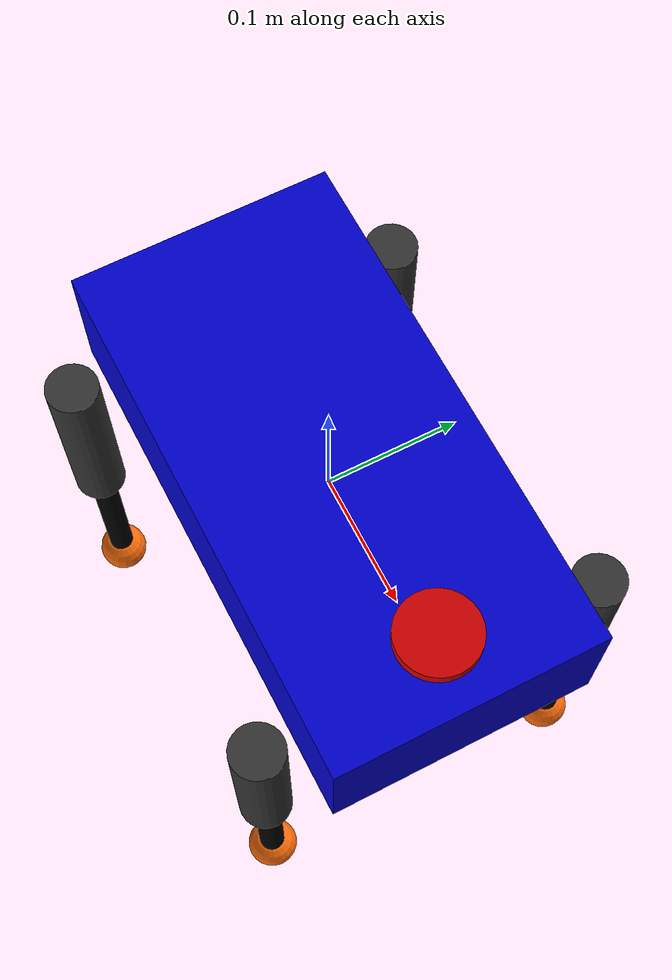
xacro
<?xml version="1.0"?>
<robot name="echowalker" xmlns:xacro="http://www.ros.org/wiki/xacro">

  <!-- Include material definitions -->
  <xacro:include filename="$(find echowalker_description)/urdf/echowalker_materials.xacro" />

  <!-- Include the robot base -->
  <xacro:include filename="$(find echowalker_description)/urdf/echowalker_base.xacro" />

  <!-- Include the leg definitions -->
  <xacro:include filename="$(find echowalker_description)/urdf/echowalker_legs.xacro" />

  <!-- Create 4 legs using the leg macro -->
  <xacro:leg prefix="front_right" reflect_x="1" reflect_y="-1" />
  <xacro:leg prefix="front_left" reflect_x="1" reflect_y="1" />
  <xacro:leg prefix="rear_right" reflect_x="-1" reflect_y="-1" />
  <xacro:leg prefix="rear_left" reflect_x="-1" reflect_y="1" />

  <!-- Add transmission elements for ROS2 control -->
  <xacro:macro name="leg_transmission" params="prefix">
    <transmission name="${prefix}_hip_trans">
      <type>transmission_interface/SimpleTransmission</type>
      <joint name="${prefix}_hip_joint">
        <hardwareInterface>hardware_interface/EffortJointInterface</hardwareInterface>
      </joint>
      <actuator name="${prefix}_hip_motor">
        <mechanicalReduction>1</mechanicalReduction>
      </actuator>
    </transmission>

    <transmission name="${prefix}_knee_trans">
      <type>transmission_interface/SimpleTransmission</type>
      <joint name="${prefix}_knee_joint">
        <hardwareInterface>hardware_interface/EffortJointInterface</hardwareInterface>
      </joint>
      <actuator name="${prefix}_knee_motor">
        <mechanicalReduction>1</mechanicalReduction>
      </actuator>
    </transmission>
  </xacro:macro>

  <!-- Apply transmissions to all legs -->
  <xacro:leg_transmission prefix="front_right" />
  <xacro:leg_transmission prefix="front_left" />
  <xacro:leg_transmission prefix="rear_right" />
  <xacro:leg_transmission prefix="rear_left" />

</robot>

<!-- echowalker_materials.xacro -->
<robot xmlns:xacro="http://www.ros.org/wiki/xacro">

  <material name="black">
    <color rgba="0.0 0.0 0.0 1.0"/>
  </material>

  <material name="blue">
    <color rgba="0.0 0.0 0.8 1.0"/>
  </material>

  <material name="green">
    <color rgba="0.0 0.8 0.0 1.0"/>
  </material>

  <material name="grey">
    <color rgba="0.2 0.2 0.2 1.0"/>
  </material>

  <material name="orange">
    <color rgba="1.0 0.423529411765 0.0392156862745 1.0"/>
  </material>

  <material name="brown">
    <color rgba="0.870588235294 0.811764705882 0.764705882353 1.0"/>
  </material>

  <material name="red">
    <color rgba="0.8 0.0 0.0 1.0"/>
  </material>

  <material name="white">
    <color rgba="1.0 1.0 1.0 1.0"/>
  </material>
</robot>

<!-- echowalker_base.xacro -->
<robot xmlns:xacro="http://www.ros.org/wiki/xacro">

  <xacro:include filename="$(find echowalker_description)/urdf/echowalker_inertia.xacro" />

  <!-- Robot Base Parameters -->
  <xacro:property name="base_length" value="0.4" />
  <xacro:property name="base_width" value="0.2" />
  <xacro:property name="base_height" value="0.1" />
  <xacro:property name="base_mass" value="3.0" />

  <!-- Base Link -->
  <link name="base_link">
    <visual>
      <origin xyz="0 0 0" rpy="0 0 0"/>
      <geometry>
        <box size="${base_length} ${base_width} ${base_height}"/>
      </geometry>
      <material name="blue"/>
    </visual>
    <collision>
      <origin xyz="0 0 0" rpy="0 0 0"/>
      <geometry>
        <box size="${base_length} ${base_width} ${base_height}"/>
      </geometry>
    </collision>
    <inertial>
      <origin xyz="0 0 0" rpy="0 0 0"/>
      <mass value="${base_mass}"/>
      <xacro:box_inertia m="${base_mass}" x="${base_length}" y="${base_width}" z="${base_height}"/>
    </inertial>
  </link>

  <!-- Sound Sensor Link -->
  <link name="sound_sensor">
    <visual>
      <origin xyz="0 0 0" rpy="0 0 0"/>
      <geometry>
        <cylinder radius="0.03" length="0.01"/>
      </geometry>
      <material name="red"/>
    </visual>
    <collision>
      <origin xyz="0 0 0" rpy="0 0 0"/>
      <geometry>
        <cylinder radius="0.03" length="0.01"/>
      </geometry>
    </collision>
    <inertial>
      <origin xyz="0 0 0" rpy="0 0 0"/>
      <mass value="0.01"/>
      <xacro:cylinder_inertia m="0.01" r="0.03" h="0.01"/>
    </inertial>
  </link>

  <!-- Sound Sensor Joint -->
  <joint name="base_to_sound_sensor" type="fixed">
    <parent link="base_link"/>
    <child link="sound_sensor"/>
    <origin xyz="${base_length/2 - 0.05} 0 ${base_height/2 + 0.01}" rpy="0 0 0"/>
  </joint>

</robot>

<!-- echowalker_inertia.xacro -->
<robot xmlns:xacro="http://www.ros.org/wiki/xacro">
  <!-- Macro for inertia matrix -->
  <xacro:macro name="box_inertia" params="m x y z">
    <inertia
      ixx="${m*(y*y+z*z)/12}" ixy="0" ixz="0"
      iyy="${m*(x*x+z*z)/12}" iyz="0"
      izz="${m*(x*x+y*y)/12}"
    />
  </xacro:macro>

  <xacro:macro name="cylinder_inertia" params="m r h">
    <inertia
      ixx="${m*(3*r*r+h*h)/12}" ixy="0" ixz="0"
      iyy="${m*(3*r*r+h*h)/12}" iyz="0"
      izz="${m*r*r/2}"
    />
  </xacro:macro>
</robot>

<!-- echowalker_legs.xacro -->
<robot xmlns:xacro="http://www.ros.org/wiki/xacro">

  <!-- Leg Parameters -->
  <xacro:property name="leg_offset_x" value="0.15" />
  <xacro:property name="leg_offset_y" value="0.13" />
  <xacro:property name="upper_leg_length" value="0.15" />
  <xacro:property name="upper_leg_radius" value="0.02" />
  <xacro:property name="upper_leg_mass" value="0.2" />
  <xacro:property name="lower_leg_length" value="0.15" />
  <xacro:property name="lower_leg_radius" value="0.01" />
  <xacro:property name="lower_leg_mass" value="0.1" />
  <xacro:property name="foot_radius" value="0.02" />
  <xacro:property name="foot_mass" value="0.05" />

  <!-- Leg macro -->
  <xacro:macro name="leg" params="prefix reflect_x reflect_y">
    <!-- Hip joint -->
    <joint name="${prefix}_hip_joint" type="revolute">
      <parent link="base_link"/>
      <child link="${prefix}_upper_leg"/>
      <origin xyz="${reflect_x * leg_offset_x} ${reflect_y * leg_offset_y} 0" rpy="0 0 0"/>
      <axis xyz="0 0 1"/>
      <limit lower="-1.57" upper="1.57" effort="10" velocity="3"/>
    </joint>

    <!-- Upper leg link -->
    <link name="${prefix}_upper_leg">
      <visual>
        <origin xyz="0 0 -${upper_leg_length/2}" rpy="0 0 0"/>
        <geometry>
          <cylinder radius="${upper_leg_radius}" length="${upper_leg_length}"/>
        </geometry>
        <material name="grey"/>
      </visual>
      <collision>
        <origin xyz="0 0 -${upper_leg_length/2}" rpy="0 0 0"/>
        <geometry>
          <cylinder radius="${upper_leg_radius}" length="${upper_leg_length}"/>
        </geometry>
      </collision>
      <inertial>
        <origin xyz="0 0 -${upper_leg_length/2}" rpy="0 0 0"/>
        <mass value="${upper_leg_mass}"/>
        <xacro:cylinder_inertia m="${upper_leg_mass}" r="${upper_leg_radius}" h="${upper_leg_length}"/>
      </inertial>
    </link>

    <!-- Knee joint -->
    <joint name="${prefix}_knee_joint" type="revolute">
      <parent link="${prefix}_upper_leg"/>
      <child link="${prefix}_lower_leg"/>
      <origin xyz="0 0 -${upper_leg_length}" rpy="0 0 0"/>
      <axis xyz="0 1 0"/>
      <limit lower="-1.57" upper="1.57" effort="10" velocity="3"/>
    </joint>

    <!-- Lower leg link -->
    <link name="${prefix}_lower_leg">
      <visual>
        <origin xyz="0 0 -${lower_leg_length/2}" rpy="0 0 0"/>
        <geometry>
          <cylinder radius="${lower_leg_radius}" length="${lower_leg_length}"/>
        </geometry>
        <material name="black"/>
      </visual>
      <collision>
        <origin xyz="0 0 -${lower_leg_length/2}" rpy="0 0 0"/>
        <geometry>
          <cylinder radius="${lower_leg_radius}" length="${lower_leg_length}"/>
        </geometry>
      </collision>
      <inertial>
        <origin xyz="0 0 -${lower_leg_length/2}" rpy="0 0 0"/>
        <mass value="${lower_leg_mass}"/>
        <xacro:cylinder_inertia m="${lower_leg_mass}" r="${lower_leg_radius}" h="${lower_leg_length}"/>
      </inertial>
    </link>

    <!-- Foot joint -->
    <joint name="${prefix}_foot_joint" type="fixed">
      <parent link="${prefix}_lower_leg"/>
      <child link="${prefix}_foot"/>
      <origin xyz="0 0 -${lower_leg_length}" rpy="0 0 0"/>
    </joint>

    <!-- Foot link -->
    <link name="${prefix}_foot">
      <visual>
        <origin xyz="0 0 0" rpy="0 0 0"/>
        <geometry>
          <sphere radius="${foot_radius}"/>
        </geometry>
        <material name="orange"/>
      </visual>
      <collision>
        <origin xyz="0 0 0" rpy="0 0 0"/>
        <geometry>
          <sphere radius="${foot_radius}"/>
        </geometry>
      </collision>
      <inertial>
        <origin xyz="0 0 0" rpy="0 0 0"/>
        <mass value="${foot_mass}"/>
        <inertia
          ixx="${2.0*foot_mass*foot_radius*foot_radius/5.0}" ixy="0.0" ixz="0.0"
          iyy="${2.0*foot_mass*foot_radius*foot_radius/5.0}" iyz="0.0"
          izz="${2.0*foot_mass*foot_radius*foot_radius/5.0}"
        />
      </inertial>
    </link>
  </xacro:macro>

</robot>
